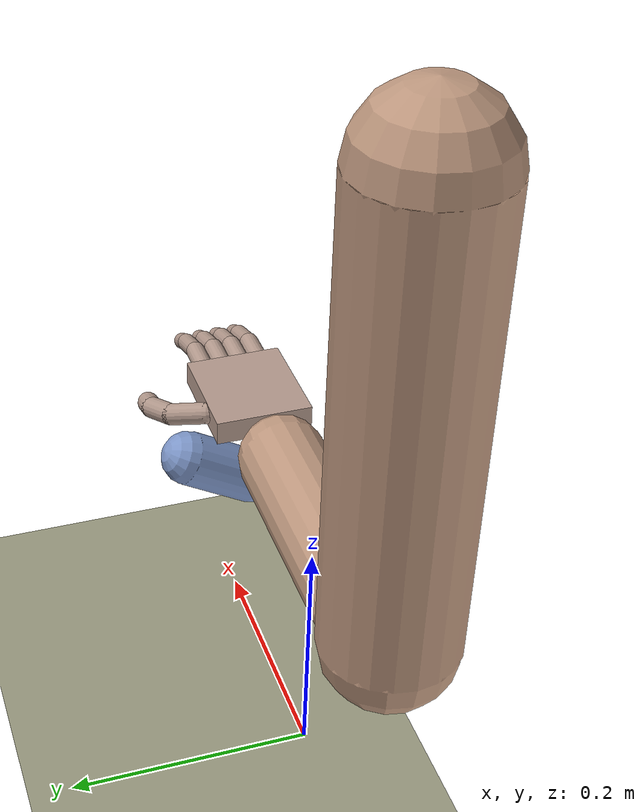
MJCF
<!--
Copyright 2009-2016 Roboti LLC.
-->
<mujoco model="arm_hand (v1.31)">
	<compiler 	inertiafromgeom="true"
				angle="radian"/>

	<size 	nuser_jnt="1"
			nuser_geom="1"/>

	<option	timestep="0.001"
			gravity="0 0 -9.8"
			viscosity="0"
			iterations="20"/>

	<asset>
		<material name="MatGnd" specular=".3" shininess=".3" reflectance="0.3" rgba=".5 .55 .5 1"/>
	</asset>

	<default>
		<joint limited="true" damping="1" stiffness="0" armature=".1" user="0"/>
		<geom solref="0.008 1" solimp="0.95 0.95 0.01" margin="0.001" user="0"/>
		<motor ctrllimited="true" ctrlrange="-1 1"/>
		<position ctrllimited="true"/>

		<default class='0'>
			<geom friction="1 0.005 0.001" rgba=".75 .6 .5 1" contype="1" conaffinity="0"/>
		</default>

		<default class='1'>
			<geom friction="1 0.005 0.001" rgba=".7 .6 .55 1" contype="1" conaffinity="0"/>
		</default>

		<default class='arm'>
			<joint damping="5"/>
		</default>
	</default>

	<worldbody>
		<light directional="true" cutoff="40" exponent="10" diffuse=".4 .4 .4" specular=".7 .7 .7" pos="0 0 1.5" dir="0 0 -1"/>
		<geom name="tableTop" material="MatGnd" type="plane" pos="0.15 0 0" size="0.4 0.6 0.5" rgba=".6 .6 .5 1" contype="1" conaffinity="1"/>

		<!--  ================= ARM ================= /-->
		<body name="upperarm" pos="-0.15 0 0.6">
			<geom class="0" type="capsule" fromto="0 0 0 0 0 -0.345" size="0.05"/>
			<joint class='arm' name="s_abduction" type="hinge" pos="0 0 0" axis="1 0 0" range="-1.57 .7" user="001"/>
			<joint class='arm' name="s_flexion" type="hinge" pos="0 0 0" axis="0 -1 0" range="-.85 1.57" user="002"/>
			<joint class='arm' name="s_rotation" type="hinge" pos="0 0 0" axis="0 0 1" range="-.85 .85" user="003"/>

			<body name="forearm" pos="0 0 -0.36">
				<geom class="0" type="capsule" fromto="0 0 0 0.225 0 0" size="0.035"/>
				<joint class='arm' name="e_flexion" type="hinge" pos="0 0 0" axis="0 -1 0" range="-1.5 1.05" user="004"/>
				<joint class='arm' name="e_pronation" type="hinge" pos="0 0 0" axis="-1 0 0" range="-1.5 1.57" user="005"/>

	<!--  ================= Palm ================= /-->
				<body name="palm" pos="0.27 0 0">
					<geom class="1" name="palm" type="box" size="0.045 0.04 0.01" pos="0.045 0 0"/>
					<joint name="w_abduction" type="hinge" pos="0 0 0" axis="0 0 1" range="-.5 .5" user="006"/>
					<joint name="w_flexion" type="hinge" pos="0 0 0" axis="0 -1 0" range="-1.05 1.05" user="007"/>

					<body name="fingers" pos=".09 0 0">
						<geom name="FFP" class="1" type="capsule" fromto=".00  .024 0 		.03   .024 0" 		size="0.008" />
						<geom name="FFM" class="1" type="capsule" fromto=".03  .024 0 		.06   .024 -.01" 	size="0.0075" />
						<geom name="FFD" class="1" type="capsule" fromto=".06  .024 -.01 	.075  .024 -.018" 	size="0.007" />

						<geom name="MFP" class="1" type="capsule" fromto=".00 -.008 0 		.03  -.008 0" 		size="0.008"/>
						<geom name="MFM" class="1" type="capsule" fromto=".03 -.008 0 		.06  -.008 -.01" 	size="0.0075" />
						<geom name="MFD" class="1" type="capsule" fromto=".06 -.008 -.01 	.075 -.008 -.018" 	size="0.007" />

						<geom name="RFP" class="1" type="capsule" fromto=".00  .008 0 		.03   .008 0" 		size="0.008" />
						<geom name="RFM" class="1" type="capsule" fromto=".03  .008 0 		.06   .008 -.01" 	size="0.0075" />
						<geom name="RFD" class="1" type="capsule" fromto=".06  .008 -.01 	.075  .008 -.018" 	size="0.007" />

						<geom name="LFP" class="1" type="capsule" fromto=".00 -.024 0 		.03  -.024 0" 		size="0.008" />
						<geom name="LFM" class="1" type="capsule" fromto=".03 -.024 0 		.06  -.024 -.01" 	size="0.0075" />
						<geom name="LFD" class="1" type="capsule" fromto=".06 -.024 -.01 	.075 -.024 -.018" 	size="0.007" />

						<joint name="fingerFlex" type="hinge" pos="0 0 0" axis="0 1 0" range="0 1.57" user="008"/>
					</body>

					<body name="thumb" pos=".03 .04 0">
						<geom name="THP" class="1" type="capsule" fromto="0 0 0 			.02 .025 -.010" 	size="0.009" />
						<geom name="THM" class="1" type="capsule" fromto=".02 .025 -.010 	.045 .035 -.018" 	size="0.009" />
						<geom name="THD" class="1" type="capsule" fromto=".045 .035 -.018 	.058 .035 -.022" 	size="0.009" />

						<joint name="thumbFlex" type="hinge" pos="0 0 0" axis="1 -.4 0" range="-2 1.05"  user="009"/>
					</body>

				</body>

			</body>

		</body>

		<!--  ================= OBJECT ================= /-->
		<body name="object" pos="0.25 0 .1" quat=".866 -.5 0 0">
			<geom type="capsule" name="geom_object" size="0.025" fromto="0 0 .035 0 0 -.035" rgba="0.5 0.6 0.8 1" user="1" contype="1" conaffinity="1"/>
			<joint name="fr" type="free" limited='false' damping="0" armature="0" user="010"/>
		</body>

	</worldbody>

	<actuator>

		<!--  ================= Torque actuators ================= /-->

		<!--  ================= Position actuators ================= /-->
		<position joint='s_abduction' 	name='As_abduction' kp="100" ctrlrange='-1.57 .7'/>
		<position joint='s_flexion' 	name='As_flexion' 	kp="100" ctrlrange='-.85 1.57'/>
		<position joint='s_rotation' 	name='As_rotation' 	kp="100" ctrlrange='-.85 0.85'/>
		<position joint='e_flexion' 	name='Ae_flexion' 	kp="70"  ctrlrange='-1.5 1.05'/>
		<position joint='e_pronation' 	name='Ae_pronation' kp="70"  ctrlrange='-1.5 1.57'/>
		<position joint='w_abduction' 	name='Aw_abduction' kp="30"  ctrlrange='-0.5 0.5'/>
		<position joint='w_flexion' 	name='Aw_flexion' 	kp="30"  ctrlrange='-1.05 1.05'/>
		<position joint='fingerFlex' 	name='AfingerFlex' 	kp="10"  ctrlrange='0 1.57'/>
		<position joint='thumbFlex' 	name='AthumbFlex' 	kp="10"  ctrlrange='-2 1.05'/>

	</actuator>

</mujoco>
